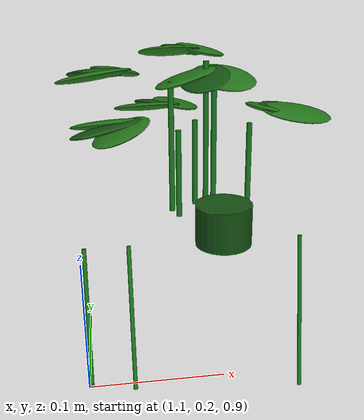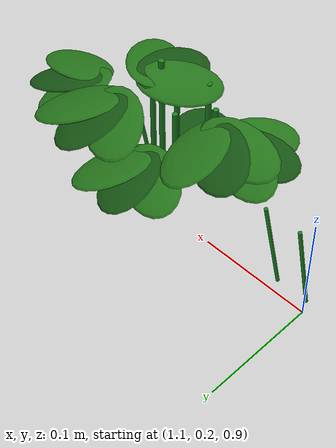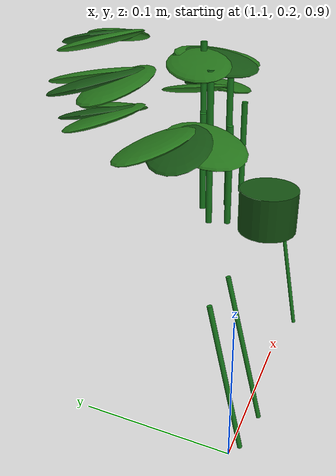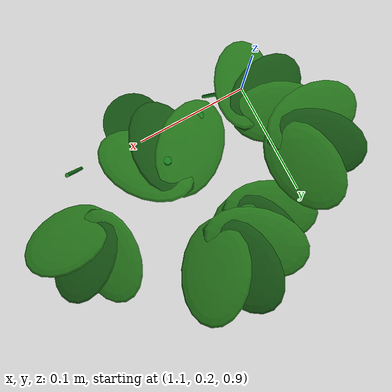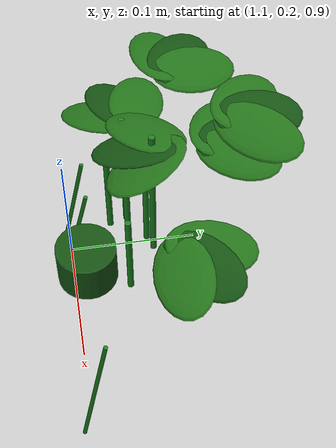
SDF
<sdf version="1.8">
 <world name="strawberry_greenhouse">
  <model name="plant_2">
   <static>true</static>
   <pose>1.2000 0.2100 1.0200 0.0000 0.0000 0.0000</pose>
   <link name="crown">
    <inertial>
     <mass>0.3</mass>
     <inertia>
      <ixx>1.250e-04</ixx>
      <iyy>1.250e-04</iyy>
      <izz>1.250e-04</izz>
      <ixy>0</ixy>
      <ixz>0</ixz>
      <iyz>0</iyz>
     </inertia>
    </inertial>
    <visual name="crown">
     <geometry><cylinder><radius>0.0200</radius><length>0.0300</length></cylinder></geometry>
     <material>
      <ambient>0.080 0.320 0.070 1</ambient>
      <diffuse>0.080 0.320 0.070 1</diffuse>
      <specular>0.1 0.1 0.1 1</specular>
     </material>
    </visual>
    <visual name="petiole_0">
     <pose>-0.0290 0.0191 0.0317 0.0000 0.0000 0.0000</pose>
     <geometry><cylinder><radius>0.0020</radius><length>0.0633</length></cylinder></geometry>
     <material>
      <ambient>0.100 0.500 0.120 1</ambient>
      <diffuse>0.100 0.500 0.120 1</diffuse>
      <specular>0.1 0.1 0.1 1</specular>
     </material>
    </visual>
    <visual name="leaf_0_0">
     <pose>-0.0770 0.0446 0.0633 0.2000 0.1500 2.8142</pose>
     <geometry><ellipsoid><radii>0.0280 0.0180 0.0030</radii></ellipsoid></geometry>
     <material>
      <ambient>0.140 0.450 0.100 1</ambient>
      <diffuse>0.140 0.450 0.100 1</diffuse>
      <specular>0.1 0.1 0.1 1</specular>
     </material>
    </visual>
    <visual name="leaf_0_1">
     <pose>-0.0767 0.0309 0.0633 0.2000 0.1500 3.5142</pose>
     <geometry><ellipsoid><radii>0.0280 0.0180 0.0030</radii></ellipsoid></geometry>
     <material>
      <ambient>0.080 0.320 0.070 1</ambient>
      <diffuse>0.080 0.320 0.070 1</diffuse>
      <specular>0.1 0.1 0.1 1</specular>
     </material>
    </visual>
    <visual name="leaf_0_2">
     <pose>-0.0676 0.0206 0.0633 0.2000 0.1500 4.2142</pose>
     <geometry><ellipsoid><radii>0.0280 0.0180 0.0030</radii></ellipsoid></geometry>
     <material>
      <ambient>0.140 0.450 0.100 1</ambient>
      <diffuse>0.140 0.450 0.100 1</diffuse>
      <specular>0.1 0.1 0.1 1</specular>
     </material>
    </visual>
    <visual name="petiole_1">
     <pose>-0.0026 0.0285 0.0475 0.0000 0.0000 0.0000</pose>
     <geometry><cylinder><radius>0.0020</radius><length>0.0951</length></cylinder></geometry>
     <material>
      <ambient>0.100 0.500 0.120 1</ambient>
      <diffuse>0.100 0.500 0.120 1</diffuse>
      <specular>0.1 0.1 0.1 1</specular>
     </material>
    </visual>
    <visual name="leaf_1_0">
     <pose>-0.0198 0.0433 0.0951 0.2000 0.1500 3.8986</pose>
     <geometry><ellipsoid><radii>0.0280 0.0180 0.0030</radii></ellipsoid></geometry>
     <material>
      <ambient>0.140 0.450 0.100 1</ambient>
      <diffuse>0.140 0.450 0.100 1</diffuse>
      <specular>0.1 0.1 0.1 1</specular>
     </material>
    </visual>
    <visual name="leaf_1_1">
     <pose>-0.0076 0.0371 0.0951 0.2000 0.1500 4.5986</pose>
     <geometry><ellipsoid><radii>0.0280 0.0180 0.0030</radii></ellipsoid></geometry>
     <material>
      <ambient>0.080 0.320 0.070 1</ambient>
      <diffuse>0.080 0.320 0.070 1</diffuse>
      <specular>0.1 0.1 0.1 1</specular>
     </material>
    </visual>
    <visual name="leaf_1_2">
     <pose>0.0058 0.0403 0.0951 0.2000 0.1500 5.2986</pose>
     <geometry><ellipsoid><radii>0.0280 0.0180 0.0030</radii></ellipsoid></geometry>
     <material>
      <ambient>0.140 0.450 0.100 1</ambient>
      <diffuse>0.140 0.450 0.100 1</diffuse>
      <specular>0.1 0.1 0.1 1</specular>
     </material>
    </visual>
    <visual name="petiole_2">
     <pose>0.0227 0.0263 0.0325 0.0000 0.0000 0.0000</pose>
     <geometry><cylinder><radius>0.0020</radius><length>0.0649</length></cylinder></geometry>
     <material>
      <ambient>0.100 0.500 0.120 1</ambient>
      <diffuse>0.100 0.500 0.120 1</diffuse>
      <specular>0.1 0.1 0.1 1</specular>
     </material>
    </visual>
    <visual name="leaf_2_0">
     <pose>0.0654 0.0533 0.0649 0.2000 0.1500 0.0320</pose>
     <geometry><ellipsoid><radii>0.0280 0.0180 0.0030</radii></ellipsoid></geometry>
     <material>
      <ambient>0.140 0.450 0.100 1</ambient>
      <diffuse>0.140 0.450 0.100 1</diffuse>
      <specular>0.1 0.1 0.1 1</specular>
     </material>
    </visual>
    <visual name="leaf_2_1">
     <pose>0.0603 0.0660 0.0649 0.2000 0.1500 0.7320</pose>
     <geometry><ellipsoid><radii>0.0280 0.0180 0.0030</radii></ellipsoid></geometry>
     <material>
      <ambient>0.080 0.320 0.070 1</ambient>
      <diffuse>0.080 0.320 0.070 1</diffuse>
      <specular>0.1 0.1 0.1 1</specular>
     </material>
    </visual>
    <visual name="leaf_2_2">
     <pose>0.0482 0.0724 0.0649 0.2000 0.1500 1.4320</pose>
     <geometry><ellipsoid><radii>0.0280 0.0180 0.0030</radii></ellipsoid></geometry>
     <material>
      <ambient>0.140 0.450 0.100 1</ambient>
      <diffuse>0.140 0.450 0.100 1</diffuse>
      <specular>0.1 0.1 0.1 1</specular>
     </material>
    </visual>
    <visual name="petiole_3">
     <pose>-0.0055 0.0451 0.0531 0.0000 0.0000 0.0000</pose>
     <geometry><cylinder><radius>0.0020</radius><length>0.1062</length></cylinder></geometry>
     <material>
      <ambient>0.100 0.500 0.120 1</ambient>
      <diffuse>0.100 0.500 0.120 1</diffuse>
      <specular>0.1 0.1 0.1 1</specular>
     </material>
    </visual>
    <visual name="leaf_3_0">
     <pose>-0.0001 0.1071 0.1062 0.2000 0.1500 0.9952</pose>
     <geometry><ellipsoid><radii>0.0280 0.0180 0.0030</radii></ellipsoid></geometry>
     <material>
      <ambient>0.140 0.450 0.100 1</ambient>
      <diffuse>0.140 0.450 0.100 1</diffuse>
      <specular>0.1 0.1 0.1 1</specular>
     </material>
    </visual>
    <visual name="leaf_3_1">
     <pose>-0.0135 0.1101 0.1062 0.2000 0.1500 1.6952</pose>
     <geometry><ellipsoid><radii>0.0280 0.0180 0.0030</radii></ellipsoid></geometry>
     <material>
      <ambient>0.080 0.320 0.070 1</ambient>
      <diffuse>0.080 0.320 0.070 1</diffuse>
      <specular>0.1 0.1 0.1 1</specular>
     </material>
    </visual>
    <visual name="leaf_3_2">
     <pose>-0.0257 0.1039 0.1062 0.2000 0.1500 2.3952</pose>
     <geometry><ellipsoid><radii>0.0280 0.0180 0.0030</radii></ellipsoid></geometry>
     <material>
      <ambient>0.140 0.450 0.100 1</ambient>
      <diffuse>0.140 0.450 0.100 1</diffuse>
      <specular>0.1 0.1 0.1 1</specular>
     </material>
    </visual>
    <visual name="petiole_4">
     <pose>-0.0141 0.0418 0.0324 0.0000 0.0000 0.0000</pose>
     <geometry><cylinder><radius>0.0020</radius><length>0.0647</length></cylinder></geometry>
     <material>
      <ambient>0.100 0.500 0.120 1</ambient>
      <diffuse>0.100 0.500 0.120 1</diffuse>
      <specular>0.1 0.1 0.1 1</specular>
     </material>
    </visual>
    <visual name="leaf_4_0">
     <pose>-0.0211 0.1023 0.0647 0.2000 0.1500 1.2110</pose>
     <geometry><ellipsoid><radii>0.0280 0.0180 0.0030</radii></ellipsoid></geometry>
     <material>
      <ambient>0.140 0.450 0.100 1</ambient>
      <diffuse>0.140 0.450 0.100 1</diffuse>
      <specular>0.1 0.1 0.1 1</specular>
     </material>
    </visual>
    <visual name="leaf_4_1">
     <pose>-0.0348 0.1024 0.0647 0.2000 0.1500 1.9110</pose>
     <geometry><ellipsoid><radii>0.0280 0.0180 0.0030</radii></ellipsoid></geometry>
     <material>
      <ambient>0.080 0.320 0.070 1</ambient>
      <diffuse>0.080 0.320 0.070 1</diffuse>
      <specular>0.1 0.1 0.1 1</specular>
     </material>
    </visual>
    <visual name="leaf_4_2">
     <pose>-0.0454 0.0937 0.0647 0.2000 0.1500 2.6110</pose>
     <geometry><ellipsoid><radii>0.0280 0.0180 0.0030</radii></ellipsoid></geometry>
     <material>
      <ambient>0.140 0.450 0.100 1</ambient>
      <diffuse>0.140 0.450 0.100 1</diffuse>
      <specular>0.1 0.1 0.1 1</specular>
     </material>
    </visual>
    <visual name="petiole_5">
     <pose>-0.0326 0.0304 0.0475 0.0000 0.0000 0.0000</pose>
     <geometry><cylinder><radius>0.0020</radius><length>0.0949</length></cylinder></geometry>
     <material>
      <ambient>0.100 0.500 0.120 1</ambient>
      <diffuse>0.100 0.500 0.120 1</diffuse>
      <specular>0.1 0.1 0.1 1</specular>
     </material>
    </visual>
    <visual name="leaf_5_0">
     <pose>-0.0692 0.0804 0.0949 0.2000 0.1500 1.7773</pose>
     <geometry><ellipsoid><radii>0.0280 0.0180 0.0030</radii></ellipsoid></geometry>
     <material>
      <ambient>0.140 0.450 0.100 1</ambient>
      <diffuse>0.140 0.450 0.100 1</diffuse>
      <specular>0.1 0.1 0.1 1</specular>
     </material>
    </visual>
    <visual name="leaf_5_1">
     <pose>-0.0809 0.0731 0.0949 0.2000 0.1500 2.4773</pose>
     <geometry><ellipsoid><radii>0.0280 0.0180 0.0030</radii></ellipsoid></geometry>
     <material>
      <ambient>0.080 0.320 0.070 1</ambient>
      <diffuse>0.080 0.320 0.070 1</diffuse>
      <specular>0.1 0.1 0.1 1</specular>
     </material>
    </visual>
    <visual name="leaf_5_2">
     <pose>-0.0851 0.0601 0.0949 0.2000 0.1500 3.1773</pose>
     <geometry><ellipsoid><radii>0.0280 0.0180 0.0030</radii></ellipsoid></geometry>
     <material>
      <ambient>0.140 0.450 0.100 1</ambient>
      <diffuse>0.140 0.450 0.100 1</diffuse>
      <specular>0.1 0.1 0.1 1</specular>
     </material>
    </visual>
    <visual name="peduncle_fruit_7">
     <pose>-0.0978 -0.0056 -0.0641 -0.2117 0.0000 0.0000</pose>
     <geometry><cylinder><radius>0.0015</radius><length>0.1005</length></cylinder></geometry>
     <material>
      <ambient>0.100 0.500 0.120 1</ambient>
      <diffuse>0.100 0.500 0.120 1</diffuse>
      <specular>0.1 0.1 0.1 1</specular>
     </material>
    </visual>
    <visual name="peduncle_fruit_8">
     <pose>-0.0668 -0.0072 -0.0665 -0.2318 0.0000 0.0000</pose>
     <geometry><cylinder><radius>0.0015</radius><length>0.1059</length></cylinder></geometry>
     <material>
      <ambient>0.100 0.500 0.120 1</ambient>
      <diffuse>0.100 0.500 0.120 1</diffuse>
      <specular>0.1 0.1 0.1 1</specular>
     </material>
    </visual>
    <visual name="peduncle_fruit_9">
     <pose>0.0579 -0.0055 -0.0729 -0.1796 0.0000 0.0000</pose>
     <geometry><cylinder><radius>0.0015</radius><length>0.1177</length></cylinder></geometry>
     <material>
      <ambient>0.100 0.500 0.120 1</ambient>
      <diffuse>0.100 0.500 0.120 1</diffuse>
      <specular>0.1 0.1 0.1 1</specular>
     </material>
    </visual>
   </link>
   <plugin filename="ignition-gazebo-detachable-joint-system" name="ignition::gazebo::systems::DetachableJoint">
    <parent_link>crown</parent_link>
    <child_model>fruit_7</child_model>
    <child_link>link</child_link>
    <detach_topic>/agrobot/sim/fruit_7/detach_anchor</detach_topic>
   </plugin>
   <plugin filename="ignition-gazebo-detachable-joint-system" name="ignition::gazebo::systems::DetachableJoint">
    <parent_link>crown</parent_link>
    <child_model>fruit_8</child_model>
    <child_link>link</child_link>
    <detach_topic>/agrobot/sim/fruit_8/detach_anchor</detach_topic>
   </plugin>
   <plugin filename="ignition-gazebo-detachable-joint-system" name="ignition::gazebo::systems::DetachableJoint">
    <parent_link>crown</parent_link>
    <child_model>fruit_9</child_model>
    <child_link>link</child_link>
    <detach_topic>/agrobot/sim/fruit_9/detach_anchor</detach_topic>
   </plugin>
  </model>
 </world>
</sdf>
